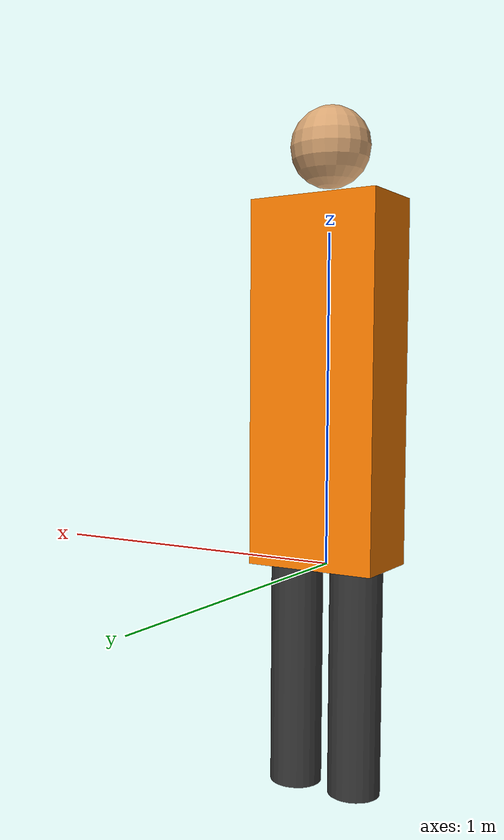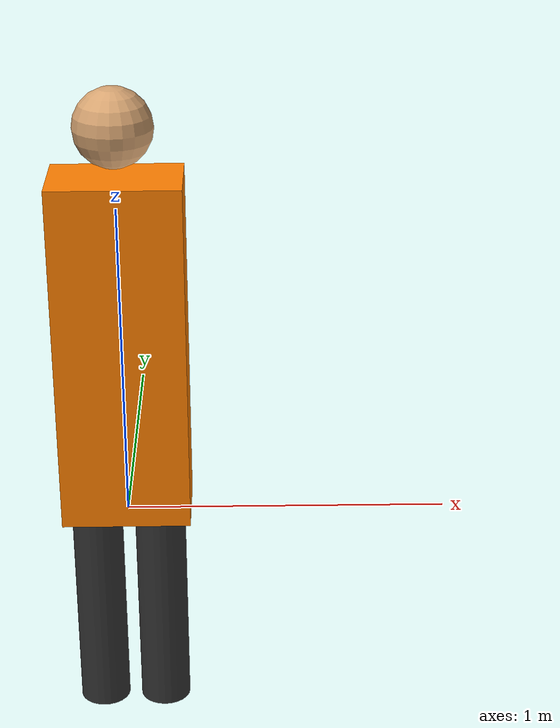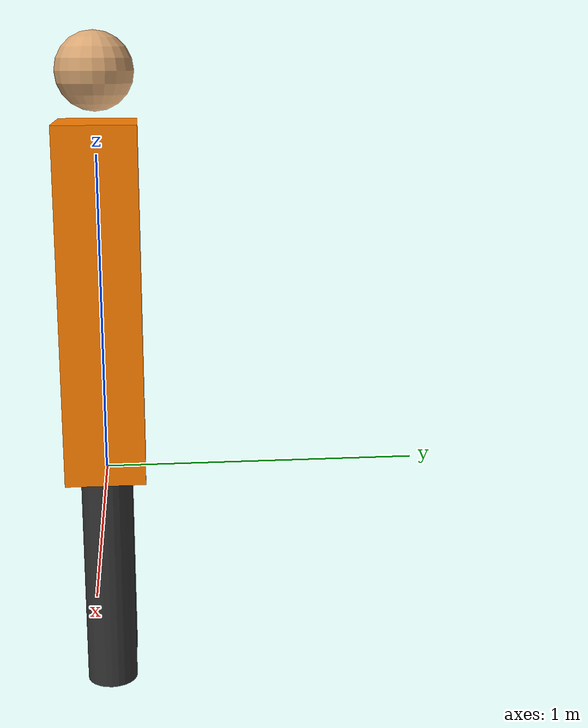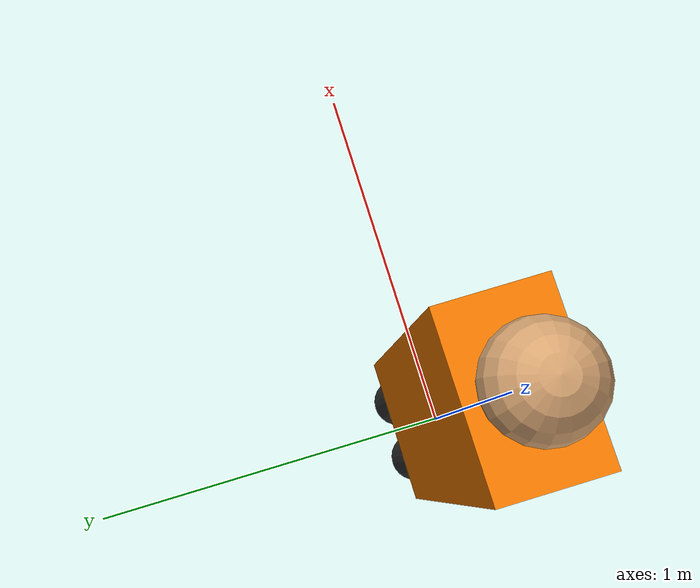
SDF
<?xml version="1.0"?>
<sdf version="1.6">
  <model name="person_standing">
    <static>true</static>
    <link name="torso">
      <pose>0 0 0.55 0 0 0</pose>
      <inertial>
        <mass>5.0</mass>
        <inertia>
          <ixx>0.5</ixx><iyy>0.5</iyy><izz>0.1</izz>
          <ixy>0</ixy><ixz>0</ixz><iyz>0</iyz>
        </inertia>
      </inertial>
      <collision name="torso_collision">
        <geometry>
          <box><size>0.4 0.25 1.1</size></box>
        </geometry>
      </collision>
      <visual name="torso_visual">
        <geometry>
          <box><size>0.4 0.25 1.1</size></box>
        </geometry>
        <material>
          <ambient>1.0 0.5 0.0 1</ambient>
          <diffuse>1.0 0.5 0.0 1</diffuse>
        </material>
      </visual>
    </link>
    <link name="head">
      <pose>0 0 1.25 0 0 0</pose>
      <inertial>
        <mass>1.0</mass>
        <inertia>
          <ixx>0.004</ixx><iyy>0.004</iyy><izz>0.004</izz>
          <ixy>0</ixy><ixz>0</ixz><iyz>0</iyz>
        </inertia>
      </inertial>
      <collision name="head_collision">
        <geometry>
          <sphere><radius>0.12</radius></sphere>
        </geometry>
      </collision>
      <visual name="head_visual">
        <geometry>
          <sphere><radius>0.12</radius></sphere>
        </geometry>
        <material>
          <ambient>0.85 0.65 0.45 1</ambient>
          <diffuse>0.85 0.65 0.45 1</diffuse>
        </material>
      </visual>
    </link>
    <link name="left_leg">
      <pose>0.1 0 -0.35 0 0 0</pose>
      <inertial>
        <mass>2.0</mass>
        <inertia>
          <ixx>0.06</ixx><iyy>0.06</iyy><izz>0.005</izz>
          <ixy>0</ixy><ixz>0</ixz><iyz>0</iyz>
        </inertia>
      </inertial>
      <collision name="left_leg_collision">
        <geometry>
          <cylinder><radius>0.08</radius><length>0.7</length></cylinder>
        </geometry>
      </collision>
      <visual name="left_leg_visual">
        <geometry>
          <cylinder><radius>0.08</radius><length>0.7</length></cylinder>
        </geometry>
        <material>
          <ambient>0.2 0.2 0.2 1</ambient>
          <diffuse>0.2 0.2 0.2 1</diffuse>
        </material>
      </visual>
    </link>
    <link name="right_leg">
      <pose>-0.1 0 -0.35 0 0 0</pose>
      <inertial>
        <mass>2.0</mass>
        <inertia>
          <ixx>0.06</ixx><iyy>0.06</iyy><izz>0.005</izz>
          <ixy>0</ixy><ixz>0</ixz><iyz>0</iyz>
        </inertia>
      </inertial>
      <collision name="right_leg_collision">
        <geometry>
          <cylinder><radius>0.08</radius><length>0.7</length></cylinder>
        </geometry>
      </collision>
      <visual name="right_leg_visual">
        <geometry>
          <cylinder><radius>0.08</radius><length>0.7</length></cylinder>
        </geometry>
        <material>
          <ambient>0.2 0.2 0.2 1</ambient>
          <diffuse>0.2 0.2 0.2 1</diffuse>
        </material>
      </visual>
    </link>
    <joint name="head_joint" type="fixed">
      <parent>torso</parent>
      <child>head</child>
    </joint>
    <joint name="left_leg_joint" type="fixed">
      <parent>torso</parent>
      <child>left_leg</child>
    </joint>
    <joint name="right_leg_joint" type="fixed">
      <parent>torso</parent>
      <child>right_leg</child>
    </joint>
  </model>
</sdf>
